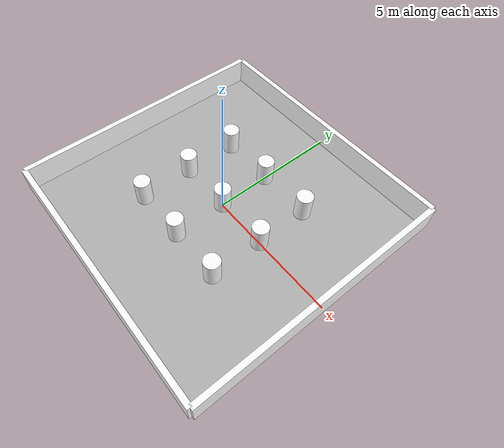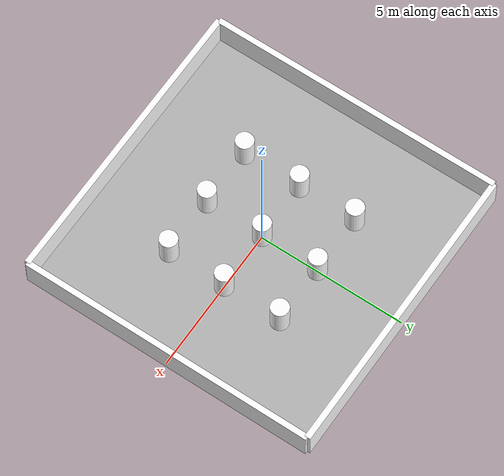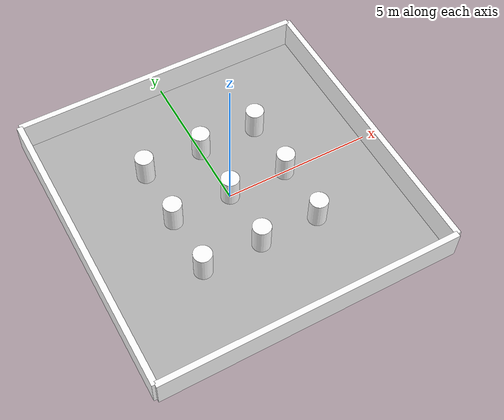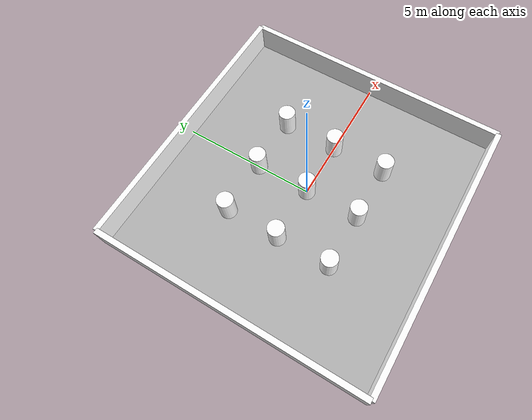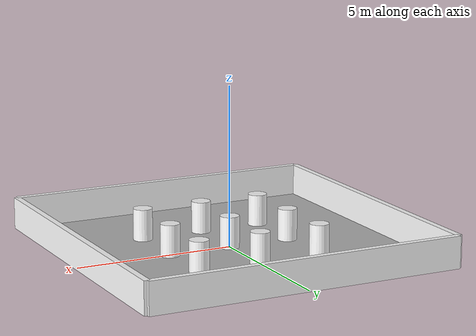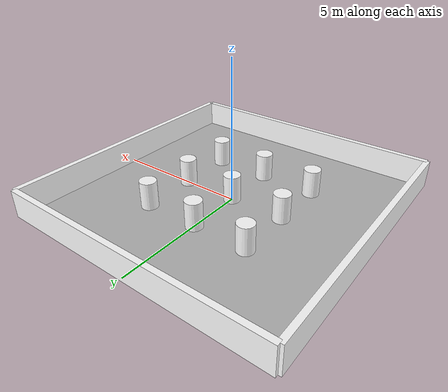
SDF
<?xml version="1.0"?>
<sdf version="1.10">
  <world name="sum2026_world">
    <physics name="1ms" type="ignored">
      <max_step_size>0.001</max_step_size>
      <real_time_factor>1.0</real_time_factor>
    </physics>

    <plugin filename="gz-sim-physics-system" name="gz::sim::systems::Physics" />
    <plugin filename="gz-sim-user-commands-system" name="gz::sim::systems::UserCommands" />
    <plugin filename="gz-sim-scene-broadcaster-system" name="gz::sim::systems::SceneBroadcaster" />
    <plugin filename="gz-sim-sensors-system" name="gz::sim::systems::Sensors">
      <render_engine>ogre2</render_engine>
    </plugin>

    <scene>
      <ambient>0.5 0.5 0.5 1</ambient>
      <background>0.8 0.8 0.8 1</background>
      <shadows>true</shadows>
    </scene>

    <light name="sun" type="directional">
      <pose>0 0 10 0 0 0</pose>
      <cast_shadows>true</cast_shadows>
      <direction>-0.5 0.1 -0.9</direction>
      <diffuse>0.8 0.8 0.8 1</diffuse>
      <specular>0.2 0.2 0.2 1</specular>
    </light>

    <model name="map">
      <static>true</static>
      <link name="link">
        <collision name="floor">
          <geometry>
            <plane>
              <normal>0 0 1</normal>
              <size>10 10</size>
            </plane>
          </geometry>
          <surface><friction><ode><mu>100</mu><mu2>50</mu2></ode></friction></surface>
        </collision>
        <visual name="floor_visual">
          <cast_shadows>false</cast_shadows>
          <geometry>
            <plane>
              <normal>0 0 1</normal>
              <size>10 10</size>
            </plane>
          </geometry>
          <material>
            <ambient>0.3 0.3 0.3 1</ambient>
            <diffuse>0.7 0.7 0.7 1</diffuse>
            <specular>0.01 0.01 0.01 1</specular>
          </material>
        </visual>

        <collision name="north_wall">
          <pose>0 5 0.5 0 0 0</pose>
          <geometry><box><size>10 0.2 1</size></box></geometry>
        </collision>
        <visual name="north_wall_visual">
          <pose>0 5 0.5 0 0 0</pose>
          <geometry><box><size>10 0.2 1</size></box></geometry>
          <material><ambient>1 1 1 1</ambient><diffuse>1 1 1 1</diffuse></material>
        </visual>

        <collision name="south_wall">
          <pose>0 -5 0.5 0 0 0</pose>
          <geometry><box><size>10 0.2 1</size></box></geometry>
        </collision>
        <visual name="south_wall_visual">
          <pose>0 -5 0.5 0 0 0</pose>
          <geometry><box><size>10 0.2 1</size></box></geometry>
          <material><ambient>1 1 1 1</ambient><diffuse>1 1 1 1</diffuse></material>
        </visual>

        <collision name="east_wall">
          <pose>5 0 0.5 0 0 0</pose>
          <geometry><box><size>0.2 10 1</size></box></geometry>
        </collision>
        <visual name="east_wall_visual">
          <pose>5 0 0.5 0 0 0</pose>
          <geometry><box><size>0.2 10 1</size></box></geometry>
          <material><ambient>1 1 1 1</ambient><diffuse>1 1 1 1</diffuse></material>
        </visual>

        <collision name="west_wall">
          <pose>-5 0 0.5 0 0 0</pose>
          <geometry><box><size>0.2 10 1</size></box></geometry>
        </collision>
        <visual name="west_wall_visual">
          <pose>-5 0 0.5 0 0 0</pose>
          <geometry><box><size>0.2 10 1</size></box></geometry>
          <material><ambient>1 1 1 1</ambient><diffuse>1 1 1 1</diffuse></material>
        </visual>

        <collision name="cylinder_1"><pose>-2 -2 0.5 0 0 0</pose><geometry><cylinder><radius>0.3</radius><length>1</length></cylinder></geometry></collision>
        <visual name="cylinder_1_visual"><pose>-2 -2 0.5 0 0 0</pose><geometry><cylinder><radius>0.3</radius><length>1</length></cylinder></geometry><material><ambient>1 1 1 1</ambient><diffuse>1 1 1 1</diffuse></material></visual>
        <collision name="cylinder_2"><pose>0 -2 0.5 0 0 0</pose><geometry><cylinder><radius>0.3</radius><length>1</length></cylinder></geometry></collision>
        <visual name="cylinder_2_visual"><pose>0 -2 0.5 0 0 0</pose><geometry><cylinder><radius>0.3</radius><length>1</length></cylinder></geometry><material><ambient>1 1 1 1</ambient><diffuse>1 1 1 1</diffuse></material></visual>
        <collision name="cylinder_3"><pose>2 -2 0.5 0 0 0</pose><geometry><cylinder><radius>0.3</radius><length>1</length></cylinder></geometry></collision>
        <visual name="cylinder_3_visual"><pose>2 -2 0.5 0 0 0</pose><geometry><cylinder><radius>0.3</radius><length>1</length></cylinder></geometry><material><ambient>1 1 1 1</ambient><diffuse>1 1 1 1</diffuse></material></visual>
        <collision name="cylinder_4"><pose>-2 0 0.5 0 0 0</pose><geometry><cylinder><radius>0.3</radius><length>1</length></cylinder></geometry></collision>
        <visual name="cylinder_4_visual"><pose>-2 0 0.5 0 0 0</pose><geometry><cylinder><radius>0.3</radius><length>1</length></cylinder></geometry><material><ambient>1 1 1 1</ambient><diffuse>1 1 1 1</diffuse></material></visual>
        <collision name="cylinder_5"><pose>0 0 0.5 0 0 0</pose><geometry><cylinder><radius>0.3</radius><length>1</length></cylinder></geometry></collision>
        <visual name="cylinder_5_visual"><pose>0 0 0.5 0 0 0</pose><geometry><cylinder><radius>0.3</radius><length>1</length></cylinder></geometry><material><ambient>1 1 1 1</ambient><diffuse>1 1 1 1</diffuse></material></visual>
        <collision name="cylinder_6"><pose>2 0 0.5 0 0 0</pose><geometry><cylinder><radius>0.3</radius><length>1</length></cylinder></geometry></collision>
        <visual name="cylinder_6_visual"><pose>2 0 0.5 0 0 0</pose><geometry><cylinder><radius>0.3</radius><length>1</length></cylinder></geometry><material><ambient>1 1 1 1</ambient><diffuse>1 1 1 1</diffuse></material></visual>
        <collision name="cylinder_7"><pose>-2 2 0.5 0 0 0</pose><geometry><cylinder><radius>0.3</radius><length>1</length></cylinder></geometry></collision>
        <visual name="cylinder_7_visual"><pose>-2 2 0.5 0 0 0</pose><geometry><cylinder><radius>0.3</radius><length>1</length></cylinder></geometry><material><ambient>1 1 1 1</ambient><diffuse>1 1 1 1</diffuse></material></visual>
        <collision name="cylinder_8"><pose>0 2 0.5 0 0 0</pose><geometry><cylinder><radius>0.3</radius><length>1</length></cylinder></geometry></collision>
        <visual name="cylinder_8_visual"><pose>0 2 0.5 0 0 0</pose><geometry><cylinder><radius>0.3</radius><length>1</length></cylinder></geometry><material><ambient>1 1 1 1</ambient><diffuse>1 1 1 1</diffuse></material></visual>
        <collision name="cylinder_9"><pose>2 2 0.5 0 0 0</pose><geometry><cylinder><radius>0.3</radius><length>1</length></cylinder></geometry></collision>
        <visual name="cylinder_9_visual"><pose>2 2 0.5 0 0 0</pose><geometry><cylinder><radius>0.3</radius><length>1</length></cylinder></geometry><material><ambient>1 1 1 1</ambient><diffuse>1 1 1 1</diffuse></material></visual>
      </link>
    </model>
  </world>
</sdf>
